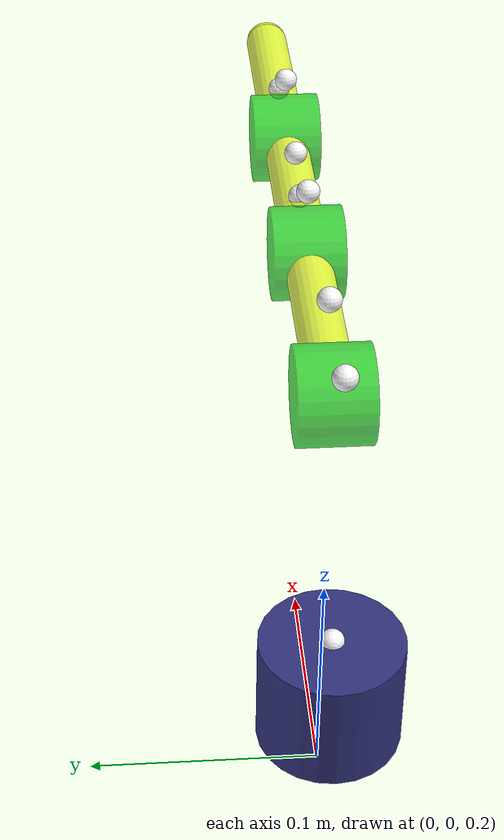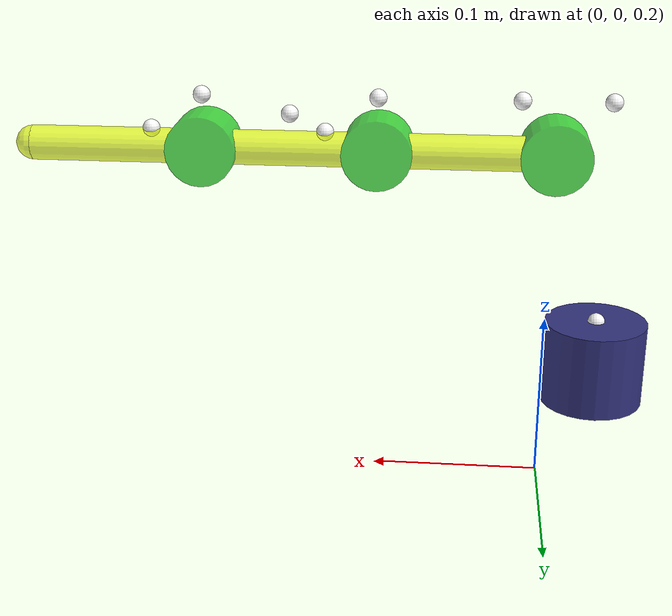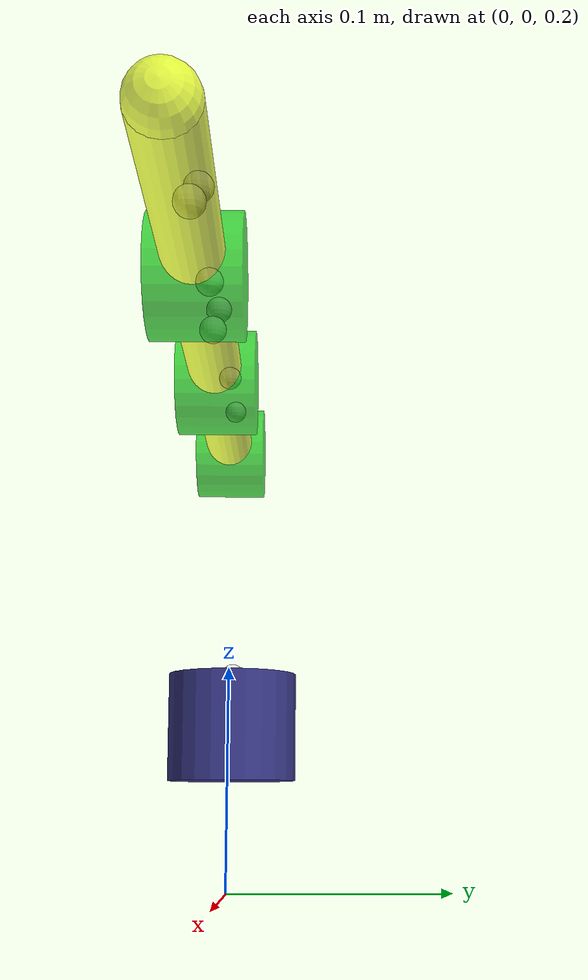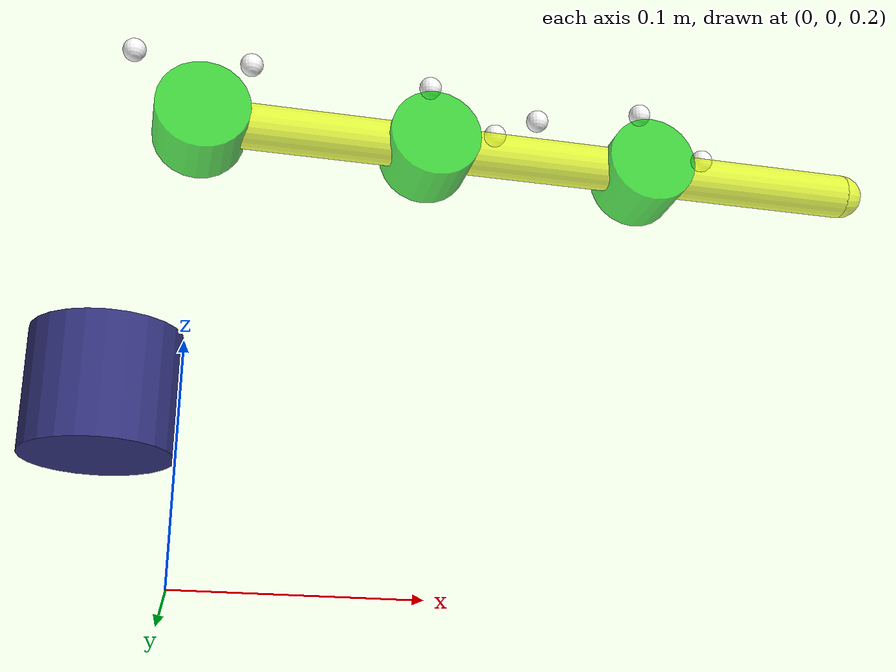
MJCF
<mujoco model="tendon">
  <compiler angle="radian" meshdir="../meshes/finger/visual/" texturedir="../textures/"/>

  <option timestep="0.001"/>

  <worldbody>
    <body name="base_link">
      <body name="base_site1_link" pos="-0.03 0 0.43">
        <inertial pos="0 0 0" quat="0.5 0.5 -0.5 0.5" mass="1e-05" diaginertia="1.25e-10 8.33333e-11 8.33333e-11"/>
        <geom name="base_site1_link_vis" size="0.005" contype="0" conaffinity="0" group="1" density="0" rgba="1 1 1 1"/>
        <geom name="base_site1_link_col" size="0.005" rgba="1 1 1 1"/>
        <site name="base_site1" pos="0 0 0"/>
      </body>
      <body name="tendon_link" pos="-0.03 0 0.3" quat="0.707107 0 -0.707107 0">
        <inertial pos="-0.025 0 0" quat="0.5 0.5 -0.5 0.5" mass="0.5" diaginertia="0.000225 0.000216667 0.000216667"/>
        <joint name="tendon_joint" pos="0 0 0" axis="1 0 0" type="slide" range="-0.01 0.10472" actuatorfrcrange="-100 100" damping="0.003" frictionloss="0.2"/>
        <geom name="tendon_link_vis" size="0.03 0.025" pos="-0.025 0 0" quat="0.707107 0 0.707107 0" type="cylinder" contype="0" conaffinity="0" group="1" density="0" rgba="0.2 0.2 0.5 1"/>
        <geom name="tendon_link_col" size="0.03 0.025" pos="-0.025 0 0" quat="0.707107 0 0.707107 0" type="cylinder" rgba="0.2 0.2 0.5 1"/>
        <body name="tendon_site1_link">
          <inertial pos="0 0 0" quat="0.5 0.5 -0.5 0.5" mass="1e-05" diaginertia="1.25e-10 8.33333e-11 8.33333e-11"/>
          <geom name="tendon_site1_link_vis" size="0.005" contype="0" conaffinity="0" group="1" density="0" rgba="1 1 1 1"/>
          <geom name="tendon_site1_link_col" size="0.005" rgba="1 1 1 1"/>
          <site name="tendon_site1" pos="0 0 0"/>
        </body>
      </body>
      <body name="mcp_link" pos="0 0 0.4" quat="0.707107 0 0 0.707107">
        <inertial pos="0 0 0" quat="0.5 0.5 -0.5 0.5" mass="0.1" diaginertia="2e-05 1.75e-05 1.75e-05"/>
        <joint name="mcp_joint" pos="0 0 0" axis="1 0 0" range="-0.174533 1.13446" actuatorfrcrange="-10 10" damping="0.003" frictionloss="0.2"/>
        <geom name="mcp_link_vis" size="0.02 0.015" quat="0.707107 0 0.707107 0" type="cylinder" contype="0" conaffinity="0" group="1" density="0" rgba="0 0.8 0 0.7"/>
        <geom name="mcp_link_col" size="0.02 0.015" quat="0.707107 0 0.707107 0" type="cylinder" rgba="0 0.8 0 0.7"/>
        <body name="mcp_bar_linkage_link" quat="0.707107 0.707107 0 0">
          <inertial pos="0 0 0.05" mass="0.1" diaginertia="8.58333e-05 8.58333e-05 5e-06"/>
          <geom name="mcp_bar_linkage_link_part1_vis" size="0.01 0.05" pos="0 0 0.05" type="cylinder" contype="0" conaffinity="0" group="1" density="0" rgba="0.9 1 0 0.7"/>
          <geom name="mcp_bar_linkage_link_part2_vis" size="0.01" pos="0 0 0.1" contype="0" conaffinity="0" group="1" density="0" rgba="0.9 1 0 0.7"/>
          <geom name="mcp_bar_linkage_link_part3_vis" size="0.01" contype="0" conaffinity="0" group="1" density="0" rgba="0.9 1 0 0.7"/>
          <geom name="mcp_bar_linkage_link_part1_col" size="0.01 0.05" pos="0 0 0.05" type="cylinder" rgba="0.9 1 0 0.7"/>
          <geom name="mcp_bar_linkage_link_part2_col" size="0.01" pos="0 0 0.1" rgba="0.9 1 0 0.7"/>
          <geom name="mcp_bar_linkage_link_part3_col" size="0.01" rgba="0.9 1 0 0.7"/>
        </body>
        <body name="mcp_site1_link" pos="0 -0.02 0.03" quat="0.707107 0 0 -0.707107">
          <inertial pos="0 0 0" quat="0.5 0.5 -0.5 0.5" mass="1e-05" diaginertia="1.25e-10 8.33333e-11 8.33333e-11"/>
          <geom name="mcp_site1_link_vis" size="0.005" contype="0" conaffinity="0" group="1" density="0" rgba="1 1 1 1"/>
          <geom name="mcp_site1_link_col" size="0.005" rgba="1 1 1 1"/>
          <site name="mcp_site1" pos="0 0 0"/>
        </body>
        <body name="pip_link" pos="0 -0.1 0">
          <inertial pos="0 0 0" quat="0.5 0.5 -0.5 0.5" mass="0.1" diaginertia="2e-05 1.75e-05 1.75e-05"/>
          <joint name="pip_joint" pos="0 0 0" axis="1 0 0" range="-0.174533 1.13446" actuatorfrcrange="-10 10" damping="0.003" frictionloss="0.2"/>
          <geom name="pip_link_vis" size="0.02 0.015" quat="0.707107 0 0.707107 0" type="cylinder" contype="0" conaffinity="0" group="1" density="0" rgba="0 0.8 0 0.7"/>
          <geom name="pip_link_col" size="0.02 0.015" quat="0.707107 0 0.707107 0" type="cylinder" rgba="0 0.8 0 0.7"/>
          <body name="pip_bar_linkage_link" quat="0.707107 0.707107 0 0">
            <inertial pos="0 0 0.05" mass="0.1" diaginertia="8.58333e-05 8.58333e-05 5e-06"/>
            <geom name="pip_bar_linkage_link_part1_vis" size="0.01 0.05" pos="0 0 0.05" type="cylinder" contype="0" conaffinity="0" group="1" density="0" rgba="0.9 1 0 0.7"/>
            <geom name="pip_bar_linkage_link_part2_vis" size="0.01" pos="0 0 0.1" contype="0" conaffinity="0" group="1" density="0" rgba="0.9 1 0 0.7"/>
            <geom name="pip_bar_linkage_link_part3_vis" size="0.01" contype="0" conaffinity="0" group="1" density="0" rgba="0.9 1 0 0.7"/>
            <geom name="pip_bar_linkage_link_part1_col" size="0.01 0.05" pos="0 0 0.05" type="cylinder" rgba="0.9 1 0 0.7"/>
            <geom name="pip_bar_linkage_link_part2_col" size="0.01" pos="0 0 0.1" rgba="0.9 1 0 0.7"/>
            <geom name="pip_bar_linkage_link_part3_col" size="0.01" rgba="0.9 1 0 0.7"/>
          </body>
          <body name="pip_site1_link" pos="0 -0.03 0.01" quat="0.707107 0 0 -0.707107">
            <inertial pos="0 0 0" quat="0.5 0.5 -0.5 0.5" mass="1e-05" diaginertia="1.25e-10 8.33333e-11 8.33333e-11"/>
            <geom name="pip_site1_link_vis" size="0.005" contype="0" conaffinity="0" group="1" density="0" rgba="1 1 1 1"/>
            <geom name="pip_site1_link_col" size="0.005" rgba="1 1 1 1"/>
            <site name="pip_site1" pos="0 0 0"/>
          </body>
          <body name="pip_site2_link" pos="0 -0.05 0.02" quat="0.707107 0 0 -0.707107">
            <inertial pos="0 0 0" quat="0.5 0.5 -0.5 0.5" mass="1e-05" diaginertia="1.25e-10 8.33333e-11 8.33333e-11"/>
            <geom name="pip_site2_link_vis" size="0.005" contype="0" conaffinity="0" group="1" density="0" rgba="1 1 1 1"/>
            <geom name="pip_site2_link_col" size="0.005" rgba="1 1 1 1"/>
            <site name="pip_site2" pos="0 0 0"/>
          </body>
          <body name="pip_site3_link" pos="0 0 0.03" quat="0.707107 0 0 -0.707107">
            <inertial pos="0 0 0" quat="0.5 0.5 -0.5 0.5" mass="1e-05" diaginertia="1.25e-10 8.33333e-11 8.33333e-11"/>
            <geom name="pip_site3_link_vis" size="0.005" contype="0" conaffinity="0" group="1" density="0" rgba="1 1 1 1"/>
            <geom name="pip_site3_link_col" size="0.005" rgba="1 1 1 1"/>
            <site name="pip_site3" pos="0 0 0"/>
          </body>
          <body name="dip_link" pos="0 -0.1 0">
            <inertial pos="0 0 0" quat="0.5 0.5 -0.5 0.5" mass="0.1" diaginertia="2e-05 1.75e-05 1.75e-05"/>
            <joint name="dip_joint" pos="0 0 0" axis="1 0 0" range="-0.174533 1.13446" actuatorfrcrange="-10 10" damping="0.003" frictionloss="0.2"/>
            <geom name="dip_link_vis" size="0.02 0.015" quat="0.707107 0 0.707107 0" type="cylinder" contype="0" conaffinity="0" group="1" density="0" rgba="0 0.8 0 0.7"/>
            <geom name="dip_link_col" size="0.02 0.015" quat="0.707107 0 0.707107 0" type="cylinder" rgba="0 0.8 0 0.7"/>
            <body name="dip_bar_linkage_link" quat="0.707107 0.707107 0 0">
              <inertial pos="0 0 0.05" mass="0.1" diaginertia="8.58333e-05 8.58333e-05 5e-06"/>
              <geom name="dip_bar_linkage_link_part1_vis" size="0.01 0.05" pos="0 0 0.05" type="cylinder" contype="0" conaffinity="0" group="1" density="0" rgba="0.9 1 0 0.7"/>
              <geom name="dip_bar_linkage_link_part2_vis" size="0.01" pos="0 0 0.1" contype="0" conaffinity="0" group="1" density="0" rgba="0.9 1 0 0.7"/>
              <geom name="dip_bar_linkage_link_part3_vis" size="0.01" contype="0" conaffinity="0" group="1" density="0" rgba="0.9 1 0 0.7"/>
              <geom name="dip_bar_linkage_link_part1_col" size="0.01 0.05" pos="0 0 0.05" type="cylinder" rgba="0.9 1 0 0.7"/>
              <geom name="dip_bar_linkage_link_part2_col" size="0.01" pos="0 0 0.1" rgba="0.9 1 0 0.7"/>
              <geom name="dip_bar_linkage_link_part3_col" size="0.01" rgba="0.9 1 0 0.7"/>
            </body>
            <body name="dip_site1_link" pos="0 -0.03 0.01" quat="0.707107 0 0 -0.707107">
              <inertial pos="0 0 0" quat="0.5 0.5 -0.5 0.5" mass="1e-05" diaginertia="1.25e-10 8.33333e-11 8.33333e-11"/>
              <geom name="dip_site1_link_vis" size="0.005" contype="0" conaffinity="0" group="1" density="0" rgba="1 1 1 1"/>
              <geom name="dip_site1_link_col" size="0.005" rgba="1 1 1 1"/>
              <site name="dip_site1" pos="0 0 0"/>
            </body>
            <body name="dip_site2_link" pos="0 0 0.03" quat="0.707107 0 0 -0.707107">
              <inertial pos="0 0 0" quat="0.5 0.5 -0.5 0.5" mass="1e-05" diaginertia="1.25e-10 8.33333e-11 8.33333e-11"/>
              <geom name="dip_site2_link_vis" size="0.005" contype="0" conaffinity="0" group="1" density="0" rgba="1 1 1 1"/>
              <geom name="dip_site2_link_col" size="0.005" rgba="1 1 1 1"/>
              <site name="dip_site2" pos="0 0 0"/>
            </body>
          </body>
        </body>
      </body>
    </body>
  </worldbody>

  <actuator>
    <general name="tendon_actuator" joint="tendon_joint" ctrlrange="-100 100"/>
    <general name="mcp_actuator" joint="mcp_joint" ctrlrange="-10 10"/>
    <general name="pip_actuator" joint="pip_joint" ctrlrange="-10 10"/>
    <general name="dip_actuator" joint="dip_joint" ctrlrange="-10 10"/>
  </actuator>
</mujoco>
